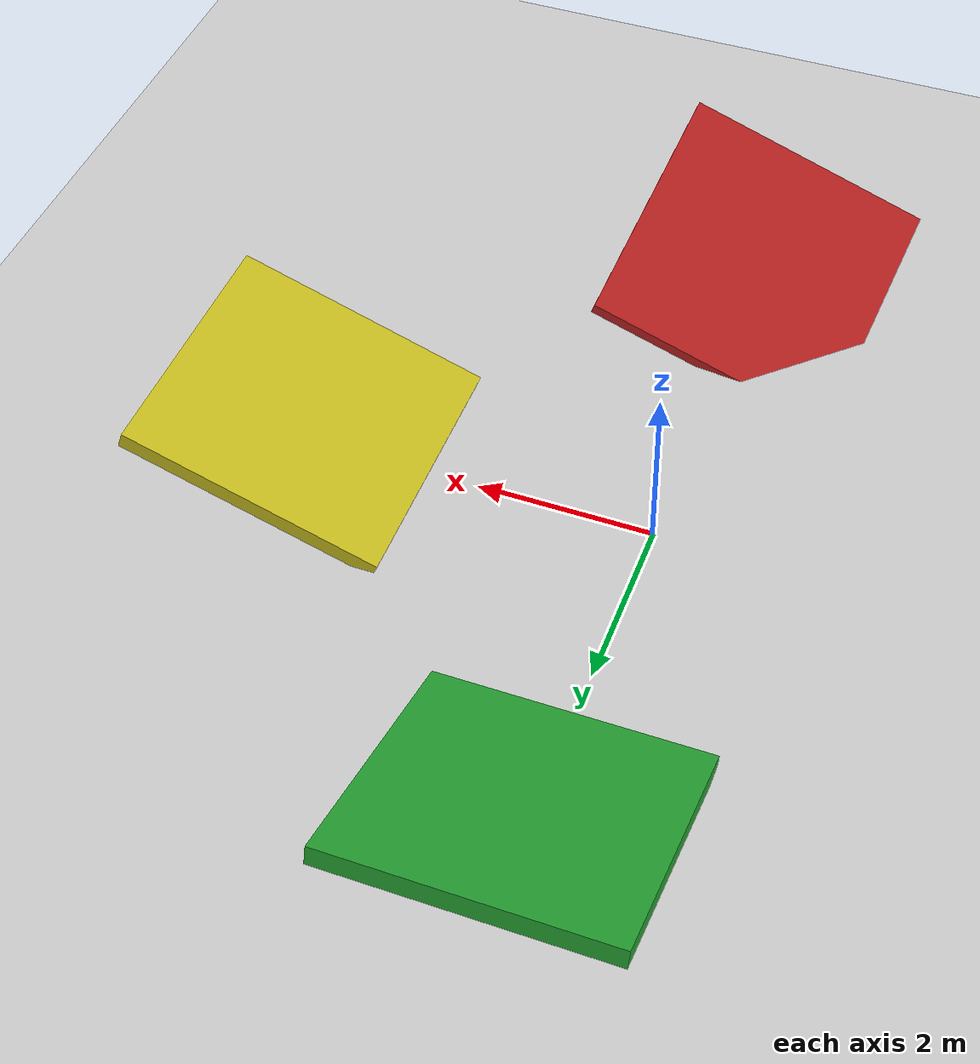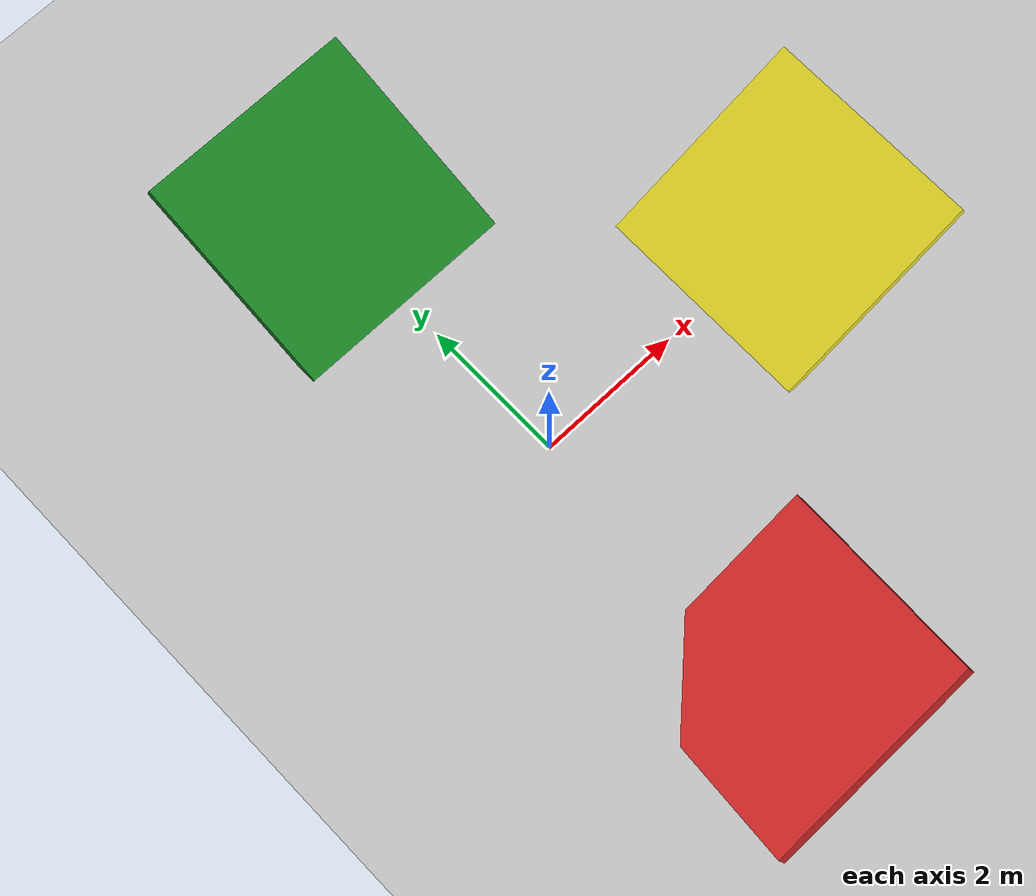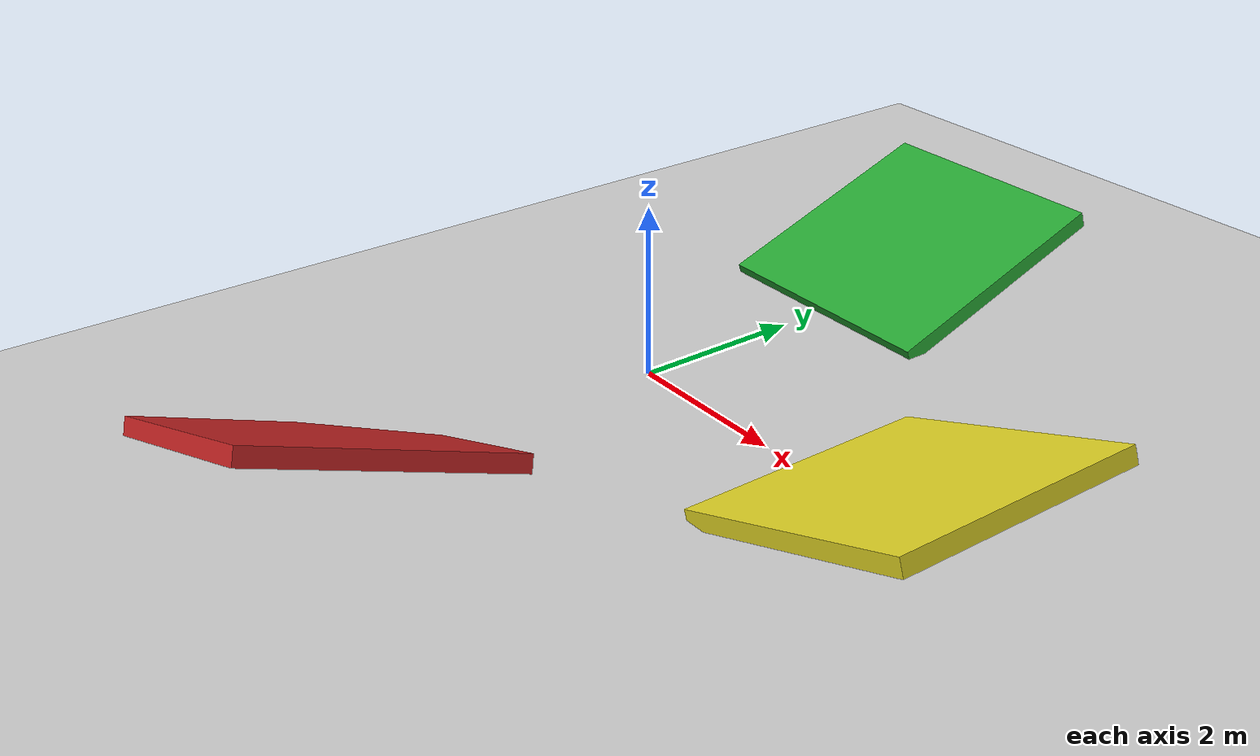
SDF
<?xml version="1.0" ?>
<sdf version="1.5">
  <world name="default">
    <spherical_coordinates>
      <surface_model>EARTH_WGS84</surface_model>
      <latitude_deg>45.535563</latitude_deg>
      <longitude_deg>11.544642</longitude_deg>
      <elevation>488.0</elevation>
    </spherical_coordinates>
    <scene>
      <ambient>0.7 0.7 0.7 1</ambient>
      <background>0.7 0.7 0.7 1</background>
      <shadows>false</shadows>
    </scene>

    <gui fullscreen='0'>
      <camera name='user_camera'>
        <pose>-12.0 -3.0 10.0 0 0.5 0.2</pose>
        <view_controller>orbit</view_controller>
        <projection_type>orthographic</projection_type>
      </camera>
    </gui>
    <!-- A global light source -->
    <include>
      <uri>model://sun</uri>
    </include>
    <!-- A ground plane -->
   <include>
      <uri>model://ground_plane</uri>
    </include>
   <include>
      <uri>model://inclined_plane</uri>
    </include>
    <physics name='default_physics' default='0' type='ode'>
      <gravity>0 0 -9.8066</gravity>
      <ode>
        <solver>
          <type>quick</type>
          <iters>50</iters>
          <sor>1.0</sor>
          <use_dynamic_moi_rescaling>0</use_dynamic_moi_rescaling>
        </solver>
        <constraints>
          <cfm>0</cfm>
          <erp>0.2</erp>
          <contact_max_correcting_vel>100</contact_max_correcting_vel>
          <contact_surface_layer>0.001</contact_surface_layer>
        </constraints>
      </ode>
      <max_step_size>0.004</max_step_size>
      <real_time_factor>1</real_time_factor>
      <real_time_update_rate>250</real_time_update_rate>
      <magnetic_field>6.0e-6 2.3e-5 -4.2e-5</magnetic_field>
    </physics>
  </world>
</sdf>

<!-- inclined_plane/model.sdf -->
<sdf version='1.7'>
  <model name='inclined_plane'>
    <link name='plane1'>
      <inertial>
        <mass>1</mass>
        <inertia>
          <ixx>0.166667</ixx>
          <ixy>0</ixy>
          <ixz>0</ixz>
          <iyy>0.166667</iyy>
          <iyz>0</iyz>
          <izz>0.166667</izz>
        </inertia>
        <pose>0 0 0 0 -0 0</pose>
      </inertial>
      <pose>0 4 0.5 0.34 -0 0</pose>
      <gravity>0</gravity>
      <self_collide>1</self_collide>
      <kinematic>0</kinematic>
      <enable_wind>0</enable_wind>
      <visual name='visual'>
        <pose>0 0 0 0 -0 0</pose>
        <geometry>
          <box>
            <size>3 3 0.2</size>
          </box>
        </geometry>
        <material>
          <lighting>1</lighting>
          <script>
            <uri>file://media/materials/scripts/gazebo.material</uri>
            <name>Gazebo/Green</name>
          </script>
          <shader type='pixel'>
            <normal_map>__default__</normal_map>
          </shader>
          <ambient>0.3 0.3 0.3 1</ambient>
          <diffuse>0 1 0 1</diffuse>
          <specular>0.01 0.01 0.01 1</specular>
          <emissive>0 0 0 1</emissive>
        </material>
        <transparency>0</transparency>
        <cast_shadows>1</cast_shadows>
      </visual>
      <collision name='collision'>
        <laser_retro>0</laser_retro>
        <max_contacts>10</max_contacts>
        <pose>0 0 0 0 -0 0</pose>
        <geometry>
          <box>
            <size>3 3 0.2</size>
          </box>
        </geometry>
        <surface>
          <friction>
            <ode>
              <mu>200</mu>
              <mu2>50</mu2>
              <fdir1>0 0 0</fdir1>
              <slip1>0</slip1>
              <slip2>0</slip2>
            </ode>
            <torsional>
              <coefficient>1</coefficient>
              <patch_radius>0</patch_radius>
              <surface_radius>0</surface_radius>
              <use_patch_radius>1</use_patch_radius>
              <ode>
                <slip>0</slip>
              </ode>
            </torsional>
          </friction>
          <bounce>
            <restitution_coefficient>0</restitution_coefficient>
            <threshold>1e+06</threshold>
          </bounce>
          <contact>
            <collide_without_contact>0</collide_without_contact>
            <collide_without_contact_bitmask>1</collide_without_contact_bitmask>
            <collide_bitmask>1</collide_bitmask>
            <ode>
              <soft_cfm>0</soft_cfm>
              <soft_erp>0.2</soft_erp>
              <kp>1e+13</kp>
              <kd>1</kd>
              <max_vel>0.01</max_vel>
              <min_depth>0.01</min_depth>
            </ode>
            <bullet>
              <split_impulse>1</split_impulse>
              <split_impulse_penetration_threshold>-0.01</split_impulse_penetration_threshold>
              <soft_cfm>0</soft_cfm>
              <soft_erp>0.2</soft_erp>
              <kp>1e+13</kp>
              <kd>1</kd>
            </bullet>
          </contact>
        </surface>
      </collision>
    </link>
    <link name='plane2'>
      <inertial>
        <mass>1</mass>
        <inertia>
          <ixx>0.166667</ixx>
          <ixy>0</ixy>
          <ixz>0</ixz>
          <iyy>0.166667</iyy>
          <iyz>0</iyz>
          <izz>0.166667</izz>
        </inertia>
        <pose>0 0 0 0 -0 0</pose>
      </inertial>
      <pose>4 0 0.5 0 -0.34 0</pose>
      <gravity>0</gravity>
      <self_collide>1</self_collide>
      <kinematic>0</kinematic>
      <enable_wind>0</enable_wind>
      <visual name='visual'>
        <pose>0 0 0 0 -0 0</pose>
        <geometry>
          <box>
            <size>3 3 0.2</size>
          </box>
        </geometry>
        <material>
          <lighting>1</lighting>
          <script>
            <uri>file://media/materials/scripts/gazebo.material</uri>
            <name>Gazebo/Yellow</name>
          </script>
          <shader type='pixel'>
            <normal_map>__default__</normal_map>
          </shader>
          <ambient>0.3 0.3 0.3 1</ambient>
          <diffuse>0 1 0 1</diffuse>
          <specular>0.01 0.01 0.01 1</specular>
          <emissive>0 0 0 1</emissive>
        </material>
        <transparency>0</transparency>
        <cast_shadows>1</cast_shadows>
      </visual>
      <collision name='collision'>
        <laser_retro>0</laser_retro>
        <max_contacts>10</max_contacts>
        <pose>0 0 0 0 -0 0</pose>
        <geometry>
          <box>
            <size>3 3 0.2</size>
          </box>
        </geometry>
        <surface>
          <friction>
            <ode>
              <mu>200</mu>
              <mu2>50</mu2>
              <fdir1>0 0 0</fdir1>
              <slip1>0</slip1>
              <slip2>0</slip2>
            </ode>
            <torsional>
              <coefficient>1</coefficient>
              <patch_radius>0</patch_radius>
              <surface_radius>0</surface_radius>
              <use_patch_radius>1</use_patch_radius>
              <ode>
                <slip>0</slip>
              </ode>
            </torsional>
          </friction>
          <bounce>
            <restitution_coefficient>0</restitution_coefficient>
            <threshold>1e+06</threshold>
          </bounce>
          <contact>
            <collide_without_contact>0</collide_without_contact>
            <collide_without_contact_bitmask>1</collide_without_contact_bitmask>
            <collide_bitmask>1</collide_bitmask>
            <ode>
              <soft_cfm>0</soft_cfm>
              <soft_erp>0.2</soft_erp>
              <kp>1e+13</kp>
              <kd>1</kd>
              <max_vel>0.01</max_vel>
              <min_depth>0.01</min_depth>
            </ode>
            <bullet>
              <split_impulse>1</split_impulse>
              <split_impulse_penetration_threshold>-0.01</split_impulse_penetration_threshold>
              <soft_cfm>0</soft_cfm>
              <soft_erp>0.2</soft_erp>
              <kp>1e+13</kp>
              <kd>1</kd>
            </bullet>
          </contact>
        </surface>
      </collision>
    </link>
    <link name='plane3'>
      <inertial>
        <mass>1</mass>
        <inertia>
          <ixx>0.166667</ixx>
          <ixy>0</ixy>
          <ixz>0</ixz>
          <iyy>0.166667</iyy>
          <iyz>0</iyz>
          <izz>0.166667</izz>
        </inertia>
        <pose>0 0 0 0 -0 0</pose>
      </inertial>
      <pose>0 -4 0.5 -0.34 -0.34 0</pose>
      <gravity>0</gravity>
      <self_collide>1</self_collide>
      <kinematic>0</kinematic>
      <enable_wind>0</enable_wind>
      <visual name='visual'>
        <pose>0 0 0 0 -0 0</pose>
        <geometry>
          <box>
            <size>3 3 0.2</size>
          </box>
        </geometry>
        <material>
          <lighting>1</lighting>
          <script>
            <uri>file://media/materials/scripts/gazebo.material</uri>
            <name>Gazebo/Red</name>
          </script>
          <shader type='pixel'>
            <normal_map>__default__</normal_map>
          </shader>
          <ambient>0.3 0.3 0.3 1</ambient>
          <diffuse>0 1 0 1</diffuse>
          <specular>0.01 0.01 0.01 1</specular>
          <emissive>0 0 0 1</emissive>
        </material>
        <transparency>0</transparency>
        <cast_shadows>1</cast_shadows>
      </visual>
      <collision name='collision'>
        <laser_retro>0</laser_retro>
        <max_contacts>10</max_contacts>
        <pose>0 0 0 0 -0 0</pose>
        <geometry>
          <box>
            <size>3 3 0.2</size>
          </box>
        </geometry>
        <surface>
          <friction>
            <ode>
              <mu>200</mu>
              <mu2>50</mu2>
              <fdir1>0 0 0</fdir1>
              <slip1>0</slip1>
              <slip2>0</slip2>
            </ode>
            <torsional>
              <coefficient>1</coefficient>
              <patch_radius>0</patch_radius>
              <surface_radius>0</surface_radius>
              <use_patch_radius>1</use_patch_radius>
              <ode>
                <slip>0</slip>
              </ode>
            </torsional>
          </friction>
          <bounce>
            <restitution_coefficient>0</restitution_coefficient>
            <threshold>1e+06</threshold>
          </bounce>
          <contact>
            <collide_without_contact>0</collide_without_contact>
            <collide_without_contact_bitmask>1</collide_without_contact_bitmask>
            <collide_bitmask>1</collide_bitmask>
            <ode>
              <soft_cfm>0</soft_cfm>
              <soft_erp>0.2</soft_erp>
              <kp>1e+13</kp>
              <kd>1</kd>
              <max_vel>0.01</max_vel>
              <min_depth>0.01</min_depth>
            </ode>
            <bullet>
              <split_impulse>1</split_impulse>
              <split_impulse_penetration_threshold>-0.01</split_impulse_penetration_threshold>
              <soft_cfm>0</soft_cfm>
              <soft_erp>0.2</soft_erp>
              <kp>1e+13</kp>
              <kd>1</kd>
            </bullet>
          </contact>
        </surface>
      </collision>
    </link>
    <static>1</static>
    <allow_auto_disable>1</allow_auto_disable>
  </model>
</sdf>
